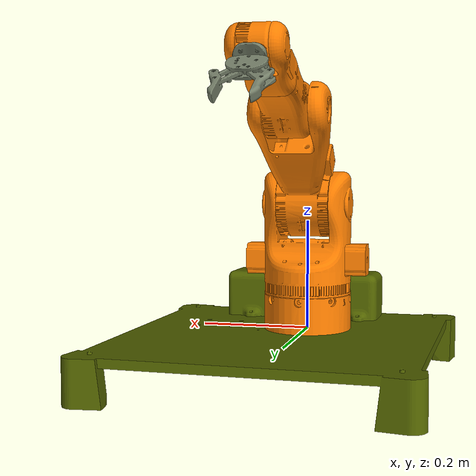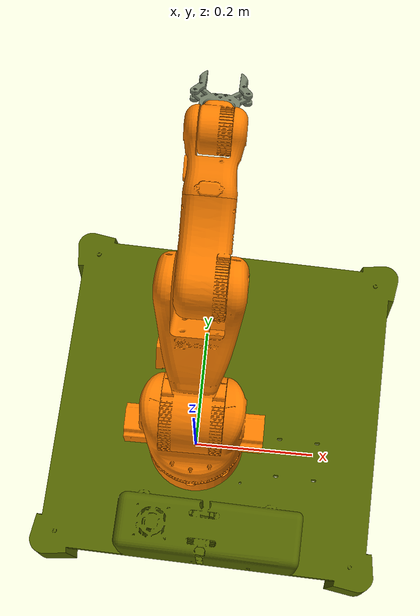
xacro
<?xml version="1.0"?>
<robot name="armrobot" xmlns:xacro="http://ros.org/wiki/xacro">

    <!-- Defining the colors used in this robot -->
    <material name="Black">
        <color rgba="0.46 0.5 0.412 1"/>
    </material>

    <material name="White">
        <color rgba="0.333 0.4 0 1"/>
    </material>

    <material name="Blue">
        <color rgba="0 0 1 1"/>
    </material>

    <material name="Red">
        <color rgba="1 0 0 1"/>
    </material>
    <material name="Yellow">
        <color rgba="1 0.502 0 1"/>
    </material>

    <!-- Constants -->
    <xacro:property name="M_PI" value="3.1415926"/>

    <!-- Inertial matrix -->
    <xacro:macro name="inertial_matrix" params="mass">
        <inertial>
            <mass value="${mass}" />
            <inertia ixx="1.0" ixy="0.0" ixz="0.0" iyy="0.5" iyz="0.0" izz="1.0" />
        </inertial>
    </xacro:macro>

    <!-- ///////////////////////////////////////   bottom_joint   ////////////////////////////////////////// -->

    <link name="base_link">
      <visual>
      <origin
        xyz="-0.055 0.22 0.048856"
        rpy="0 0 0.365" />
      <geometry>
        <mesh
          filename="package://armrobot_description/meshes/base_link.STL" />
      </geometry>
           <material name="White" />
      </visual>
    <collision>
      <origin
        xyz="-0.055 0.22 0.048856"
        rpy="0 0 0.365" />
      <geometry>
        <mesh
          filename="package://armrobot_description/meshes/base_link.STL" />
      </geometry>
    </collision>
        <xacro:inertial_matrix mass="500"/>
    </link>
    <joint name="bottom_joint" type="fixed">
        <origin
      xyz="0 0 0"
      rpy="${M_PI/2} 0 0" />
        <parent link="base_link"/>
        <child link="bottom_link"/>
    </joint>
    <!-- /////////////////////////////////////   BASE LINK    ////////////////////////////////////////////// -->
    <link name="bottom_link">
        <visual>
      <origin
        xyz="0 0 0"
        rpy="0 0 0" />
      <geometry>
        <mesh
          filename="package://armrobot_description/meshes/Buttom_Link.STL" />
      </geometry>
      <material name="Yellow" />
    </visual>
        <collision>
      <origin
        xyz="0 0 0"
        rpy="0 0 0" />
      <geometry>
        <mesh
          filename="package://armrobot_description/meshes/Buttom_Link.STL" />
      </geometry>
    </collision>
    <xacro:inertial_matrix mass="100"/>
    </link>
    <joint name="link1_joint" type="revolute">
        <parent link="bottom_link"/>
        <child link="link1"/>
        <origin
      xyz="0 0.066 0"
      rpy="${M_PI} 0 -${M_PI}" />
       <axis xyz="0 1 0" />
        <limit effort="300" velocity="1" lower="-${M_PI/2}" upper="${M_PI/2}"/>
        <dynamics damping="50" friction="1"/>
    </joint>

    <!-- /////////////////////////////////////  KINETIC_CAMER  ////////////////////////////////////////////// -->
    <link name="link1" >
        <visual>
      <origin
        xyz="0 0 0"
        rpy="0 0 0" />
      <geometry>
        <mesh
          filename="package://armrobot_description/meshes/link1.STL" />
      </geometry>
      <material name="Yellow" />
    </visual>
    <collision>
      <origin
        xyz="0 0 0"
        rpy="0 0 0" />
      <geometry>
        <mesh
          filename="package://armrobot_description/meshes/link1.STL" />
      </geometry>
    </collision>
        <xacro:inertial_matrix mass="1"/>
    </link>

    <joint name="link2_joint" type="revolute">
        <parent link="link1"/>
        <child link="link2"/>
        <origin
      xyz="0 0.1655 0"
      rpy="-${M_PI} 0.82923 ${M_PI/2}" />
        <axis xyz="0 1 0" />
        <limit effort="300" velocity="1" lower="-${M_PI/2}" upper="${M_PI/2}"/>
        <dynamics damping="50" friction="1"/>
    </joint>

    <!-- /////////////////////////////////////  RIGHT_LINK1  ////////////////////////////////////////////// -->
    <link name="link2" >
         <visual>
      <origin
        xyz="0 0 0"
        rpy="0 0 0" />
      <geometry>
        <mesh
          filename="package://armrobot_description/meshes/link2.STL" />
      </geometry>
      <material name="Yellow" />
    </visual>
    <collision>
      <origin
        xyz="0 0 0"
        rpy="0 0 0" />
      <geometry>
        <mesh
          filename="package://armrobot_description/meshes/link2.STL" />
      </geometry>
    </collision>
        <xacro:inertial_matrix mass="1"/>
    </link>
    <joint name="link3_joint" type="revolute">
        <parent link="link2"/>
        <child link="link3"/>
        <origin
      xyz="0 -0.00099213 -0.221"
      rpy="-2.2792E-15 -1.1034 3.2031E-15" />
       <axis xyz="0 1 0" />
        <limit effort="300" velocity="1" lower="-${M_PI/2}" upper="${M_PI/2}"/>
        <dynamics damping="50" friction="1"/>
    </joint>

    <!-- /////////////////////////////////////  LEFT_LINK1  ////////////////////////////////////////////// -->
    <link name="link3" >
        <visual>
      <origin
        xyz="-0.128 0 0.0345"
        rpy="0 0 0" />
      <geometry>
        <mesh
          filename="package://armrobot_description/meshes/link3.STL" />
      </geometry>
      <material name="Yellow" />
    </visual>
    <collision>
      <origin
        xyz="-0.128 0 0.0345"
        rpy="0 0 0" />
      <geometry>
        <mesh
          filename="package://armrobot_description/meshes/link3.STL" />
      </geometry>
    </collision>
        <xacro:inertial_matrix mass="1"/>
    </link>
    <joint name="link4_joint" type="revolute">
        <parent link="link3"/>
        <child link="link4"/>
        <origin
      xyz="-0.128 0 -0.0004"
      rpy="${M_PI} 1.5708 -${M_PI/2}" />
        <axis xyz="0 1 0" />
        <limit effort="300" velocity="1" lower="-${M_PI/2}" upper="${M_PI/2}"/>
        <dynamics damping="50" friction="1"/>
    </joint>

    <!-- /////////////////////////////////////  RIGHT_LINK2  ////////////////////////////////////////////// -->
    <link name="link4" >
        <visual>
      <origin
        xyz="-0.0498 0 -0.045"
        rpy="0 0 0" />
      <geometry>
        <mesh
          filename="package://armrobot_description/meshes/link4.STL" />
      </geometry>
      <material name="Yellow" />
        </visual>
    <collision>
      <origin
        xyz="-0.0498 0 -0.045"
        rpy="0 0 0" />
      <geometry>
        <mesh
          filename="package://armrobot_description/meshes/link4.STL" />
      </geometry>
        </collision>
        <xacro:inertial_matrix mass="1"/>
    </link>
    <joint name="link5_joint" type="revolute">
        <parent link="link4"/>
        <child link="link5"/>
         <origin
      xyz="0 0.095 0"
      rpy="${M_PI/2} -4.4409E-16 0.92098" />
        <axis xyz="0 1 0" />
        <limit effort="300" velocity="1" lower="-${M_PI/2}" upper="${M_PI/2}"/>
        <dynamics damping="50" friction="1"/>
    </joint>

    <!-- /////////////////////////////////////  LEFT_LINK2  ////////////////////////////////////////////// -->
    <link name="link5" >
        <visual>
      <origin
        xyz="0 0 0"
        rpy="0 0 0" />
      <geometry>
        <mesh
          filename="package://armrobot_description/meshes/link5.STL" />
      </geometry>
      <material name="Yellow" />
    </visual>
    <collision>
      <origin
        xyz="0 0 0"
        rpy="0 0 0" />
      <geometry>
        <mesh
          filename="package://armrobot_description/meshes/link5.STL" />
      </geometry>
    </collision>
        <xacro:inertial_matrix mass="1"/>
    </link>
    <joint name="plat_joint" type="revolute">
        <parent link="link5"/>
        <child link="plat_link"/>
        <origin
      xyz="0 0 -0.042"
      rpy="${M_PI/2} 0 ${M_PI/2}" />
    <axis xyz="0 1 0" />
    <limit effort="300" velocity="1" lower="-${M_PI/2}" upper="${M_PI/2}"/>
    <dynamics damping="50" friction="1"/>

    </joint>

    <!-- /////////////////////////////////////  RIGHT_LINK3  ////////////////////////////////////////////// -->
    <link name="plat_link" >
       <visual>
      <origin
        xyz="0.01 0.066 0.0275"
        rpy="0 0 0" />
      <geometry>
        <mesh
          filename="package://armrobot_description/meshes/plat_link.STL" />
      </geometry>
      <material name="Black" />
    </visual>
    <collision>
      <origin
        xyz="0.01 0.066 0.0275"
        rpy="0 0 0" />
      <geometry>
        <mesh
          filename="package://armrobot_description/meshes/plat_link.STL" />
      </geometry>
    </collision>
        <xacro:inertial_matrix mass="1"/>
    </link>
       <!-- /////////////////////////////////   Gazebo   ////////////////////////////////////// -->

    <gazebo reference="base_link">
        <material>Gazebo/White</material>
    </gazebo>
    <gazebo reference="bottom_link">
        <material>Gazebo/Yellow</material>
    </gazebo>
    <gazebo reference="link1">
        <material>Gazebo/Yellow</material>
    </gazebo>
    <gazebo reference="link2">
        <material>Gazebo/Yellow</material>
    </gazebo>
    <gazebo reference="link3">
        <material>Gazebo/Yellow</material>
    </gazebo>
    <gazebo reference="link4">
        <material>Gazebo/Yellow</material>
    </gazebo>
    <gazebo reference="link5">
        <material>Gazebo/Yellow</material>
    </gazebo>

    <gazebo reference="plat_link">
        <material>Gazebo/Black</material>
    </gazebo>

    <!-- Transmissions for ROS Control -->
    <xacro:macro name="transmission_block" params="joint_name">
        <transmission name="tran1">
            <type>transmission_interface/SimpleTransmission</type>
            <joint name="${joint_name}">
                <hardwareInterface>hardware_interface/PositionJointInterface</hardwareInterface>
            </joint>
            <actuator name="motor1">
                <hardwareInterface>hardware_interface/PositionJointInterface</hardwareInterface>
                <mechanicalReduction>1</mechanicalReduction>
            </actuator>
        </transmission>
    </xacro:macro>

    <xacro:transmission_block joint_name="link1_joint"/>
    <xacro:transmission_block joint_name="link2_joint"/>
    <xacro:transmission_block joint_name="link3_joint"/>
    <xacro:transmission_block joint_name="link4_joint"/>
    <xacro:transmission_block joint_name="link5_joint"/>
    <xacro:transmission_block joint_name="plat_joint"/>

    <!-- ros_control plugin -->
    <gazebo>
        <plugin name="gazebo_ros_control" filename="libgazebo_ros_control.so">
            <robotNamespace>/armrobot</robotNamespace>
        </plugin>
    </gazebo>

</robot>
